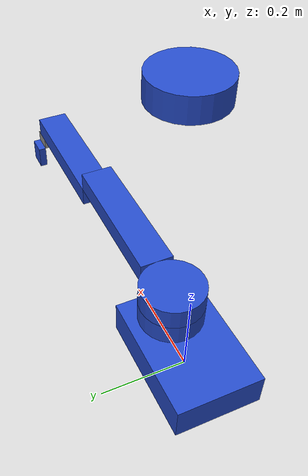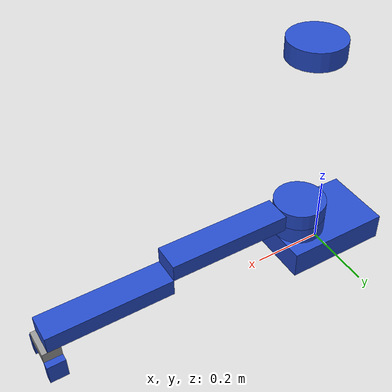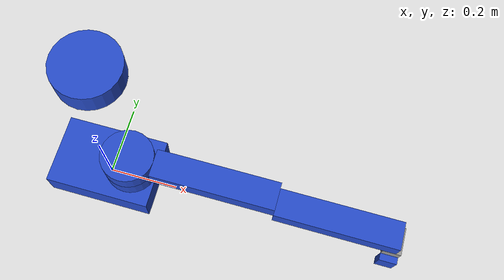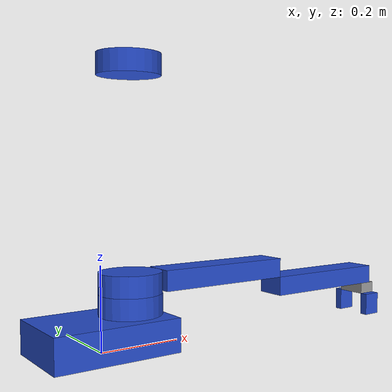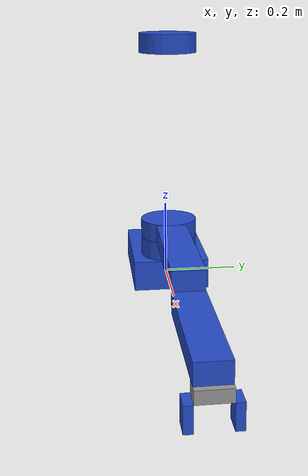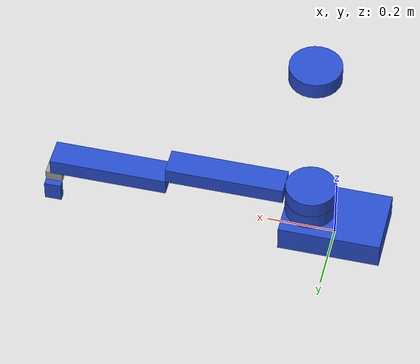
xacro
<?xml version="1.0"?>

<robot xmlns:xacro="http://www.ros.org/wiki/xacro">

    <xacro:property name="base_scara_length" value="0.3"/>
    <xacro:property name="base_scara_width" value ="0.2"/>
    <xacro:property name="base_scara_height" value="0.08"/>
    <xacro:property name="scara_support_radius" value="0.075"/>
    <xacro:property name="scara_support_length" value="0.05"/>
    <xacro:property name="arm_length" value="0.35"/>
    <xacro:property name="arm_width" value ="0.08"/>
    <xacro:property name="arm_height" value="0.05"/>
    <xacro:property name="base_gripper_length" value="0.05"/>
    <xacro:property name="base_gripper_width" value ="0.08"/>
    <xacro:property name="base_gripper_height" value="0.03"/>
    <xacro:property name="gripper_length" value="0.05"/>
    <xacro:property name="gripper_width" value ="0.02"/>
    <xacro:property name="gripper_height" value="0.06"/>

    <xacro:property name="base_scara_mass" value="3.0"/>
    <xacro:property name="scara_support_mass" value="1.0"/>
    <xacro:property name="arm_mass" value="1.0"/>
    <xacro:property name="base_gripper_mass" value="0.2"/>
    <xacro:property name="gripper_mass" value="0.1"/>

    <xacro:macro name="support_link" params="prefix z">
        <link name="${prefix}_scara_link">
            <visual>
                <geometry>
                    <cylinder radius="${scara_support_radius}" length="${scara_support_length}"/>
                </geometry>
                <origin xyz="0 0 ${z}" rpy="0 0 0"/>
                <material name="blue"/>
            </visual>
            <collision>
                <geometry>
                    <cylinder radius="${scara_support_radius}" length="${scara_support_length}"/>
                </geometry>
                <origin xyz="0 0 ${z}" rpy="0 0 0"/>
            </collision>
            <xacro:cylinder_inertia m="${scara_support_mass}" r="${scara_support_radius}" h="${scara_support_length}"
                                    o_xyz="0 0 ${z}" o_rpy="0 0 0"/>
        </link>
    </xacro:macro>

    <xacro:macro name="arm_link" params="prefix">
        <link name="arm_${prefix}_link">
            <visual>
                <geometry>
                    <box size="${arm_length} ${arm_width} ${arm_height}"/>
                </geometry>
                <origin xyz="0.175 0 0" rpy="0 0 0"/>
                <material name="blue"/>
            </visual>
            <collision>
                <geometry>
                    <box size="${arm_length} ${arm_width} ${arm_height}"/>
                </geometry>
                <origin xyz="0.175 0 0" rpy="0 0 0"/>
            </collision>
            <xacro:box_inertia m="${arm_mass}" x="${arm_length}" y="${arm_width}" z="${arm_height}"
                           o_xyz="0.175 0 0" o_rpy="0 0 0"/>
        </link>
    </xacro:macro>

    <xacro:macro name="gripper_link" params="prefix">
        <link name="${prefix}_gripper_link">
            <visual>
                <geometry>
                    <box size="${gripper_length} ${gripper_width} ${gripper_height}"/>
                </geometry>
                <origin xyz="0 0 0" rpy="0 0 0"/>
                <material name="blue"/>
            </visual>
            <collision>
                <geometry>
                    <box size="${gripper_length} ${gripper_width} ${gripper_height}"/>
                </geometry>
                <origin xyz="0 0 0" rpy="0 0 0"/>
            </collision>
            <xacro:box_inertia m="${gripper_mass}" x="${gripper_length}" y="${gripper_width}" z="${gripper_height}"
                           o_xyz="0 0 0" o_rpy="0 0 0"/>
        </link>
    </xacro:macro>

    <link name="base_scara_link">
        <visual>
            <geometry>
                <box size="${base_scara_length} ${base_scara_width} ${base_scara_height}"/>
            </geometry>
            <origin xyz="0 0 0.04" rpy="0 0 0"/>
            <material name="blue"/>
        </visual>
        <collision>
                <geometry>
                    <box size="${base_scara_length} ${base_scara_width} ${base_scara_height}"/>
                </geometry>
                <origin xyz="0 0 0.04" rpy="0 0 0"/>
            </collision>
            <xacro:box_inertia m="${base_scara_mass}" x="${base_scara_length}" y="${base_scara_width}" z="${base_scara_height}"
                           o_xyz="0 0 0.04" o_rpy="0 0 0"/>
    </link>

    <xacro:support_link prefix="first_support" z="0.025"/>
    <xacro:support_link prefix="second_support" z="0.025"/>
    <xacro:support_link prefix="movable" z="0"/>

    <xacro:arm_link prefix="1"/>
    <xacro:arm_link prefix="2"/>

    <link name="base_gripper_link">
        <visual>
            <geometry>
                <box size="${base_gripper_length} ${base_gripper_width} ${base_gripper_height}"/>
            </geometry>
            <origin xyz="0 0 0" rpy="0 0 0"/>
            <material name="grey"/>
        </visual>
        <collision>
                <geometry>
                    <box size="${base_gripper_length} ${base_gripper_width} ${base_gripper_height}"/>
                </geometry>
                <origin xyz="0 0 0" rpy="0 0 0"/>
            </collision>
            <xacro:box_inertia m="${base_gripper_mass}" x="${base_gripper_length}" y="${base_gripper_width}" z="${base_gripper_height}"
                           o_xyz="0 0 0" o_rpy="0 0 0"/>
    </link>

    <xacro:gripper_link prefix="left"/>
    <xacro:gripper_link prefix="right"/>

------------------------------------------------------------

    <joint name="scara_base_first_support_joint" type="revolute">
        <parent link="base_scara_link"/>
        <child link="first_support_scara_link"/>
        <origin xyz="0.075 0 0.08" rpy="0 0 0"/>
        <axis xyz="0 0 1"/>

        <limit lower="-3.14" upper="3.14" effort="500.0" velocity="1.0"/>
        <dynamics friction="20" damping="5" />

    </joint>

    <joint name="support_scara_joint" type="fixed">
        <parent link="first_support_scara_link"/>
        <child link="second_support_scara_link"/>
        <origin xyz="0 0 0.55" rpy="0 0 0"/>
    </joint>

    <joint name="first_support_movable_scara_joint" type="prismatic">
        <parent link="first_support_scara_link"/>
        <child link="movable_scara_link"/>
        <origin xyz="0 0 0.075" rpy="0 0 0"/>
        <axis xyz="0 0 1"/>
        <limit lower="0" upper="0.45" effort="300.0" velocity="3.0"/>
        <dynamics friction="20" damping="5"/>
    </joint>

    <joint name="movable_scara_arm_1_joint" type="fixed">
        <parent link="movable_scara_link"/>
        <child link="arm_1_link"/>
        <origin xyz="0.075 0 0" rpy="0 0 0"/>
    </joint>

    <joint name="arm_joint" type="revolute">
        <parent link="arm_1_link"/>
        <child link="arm_2_link"/>
        <origin xyz="0.35 0 -0.05" rpy="0 0 0"/>
        <axis xyz="0 0 1"/>
        <limit lower="-3.14" upper="3.14" effort="500.0" velocity="3.0"/>
        <dynamics friction="15" damping="5" />
    </joint>

    <joint name="arm2_base_gripper_joint" type="revolute">
        <parent link="arm_2_link"/>
        <child link="base_gripper_link"/>
        <origin xyz="0.34 0 -0.040" rpy="0 0 0"/>
        <axis xyz="0 0 1"/>
        <limit lower="-3.14" upper="3.14" effort="80.0" velocity="1.0"/>
        <dynamics friction="5" damping="0.5" />
    </joint>

    <joint name="base_right_gripper_joint" type="prismatic">
        <parent link="base_gripper_link"/>
        <child link="right_gripper_link"/>
        <origin xyz="0 -0.05 -0.045" rpy="0 0 0"/>
        <axis xyz="0 1 0"/>
        <limit lower="-0.02" upper="0.02" effort="100.0" velocity="1.0"/>
        <dynamics friction="2.5" damping="0.8"/>
    </joint>

    <joint name="base_left_gripper_joint" type="prismatic">
        <parent link="base_gripper_link"/>
        <child link="left_gripper_link"/>
        <origin xyz="0 0.05 -0.045" rpy="0 0 0"/>
        <axis xyz="0 1 0"/>
        <limit lower="-0.02" upper="0.02" effort="100.0" velocity="1.0"/>
        <dynamics friction="2.5" damping="0.8"/>
    </joint>

</robot>
